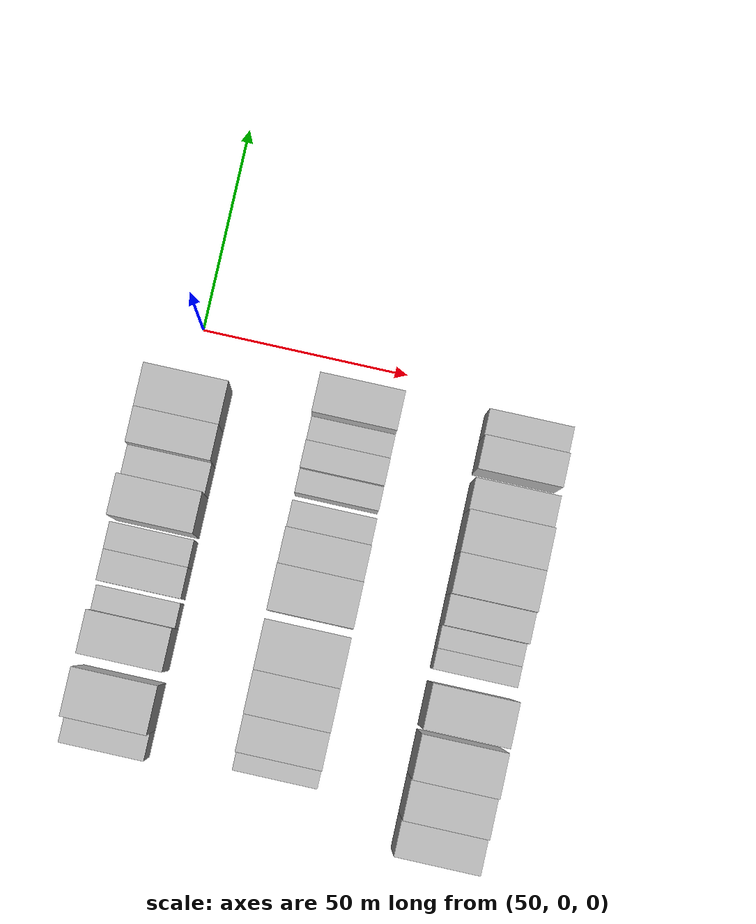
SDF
<sdf version="1.6">
 <world name="default">
  <model name="building_33">
   <static>1</static>
   <pose>50.0000 -98.5830 0 0.000000 0.000000 0.000000</pose>
   <link name="link">
    <pose>0 0 7.50 0 0 0</pose>
    <collision name="collision"><geometry><box><size>20.0000 6.4369 15.0000</size></box></geometry></collision>
    <visual name="visual">
     <cast_shadows>0</cast_shadows>
     <geometry><box><size>20.0000 6.4369 15.0000</size></box></geometry>
     <material>
      <script>
       <uri>model://HANNAS_wall/materials/scripts</uri>
       <uri>model://HANNAS_wall/materials/textures</uri>
       <name>vrc/HANNAS_wall</name>
      </script>
     </material>
    </visual>
   </link>
  </model>
  <model name="building_34">
   <static>1</static>
   <pose>50.0000 -89.6966 0 0.000000 0.000000 0.000000</pose>
   <link name="link">
    <pose>0 0 12.00 0 0 0</pose>
    <collision name="collision"><geometry><box><size>20.0000 11.3359 24.0000</size></box></geometry></collision>
    <visual name="visual">
     <cast_shadows>0</cast_shadows>
     <geometry><box><size>20.0000 11.3359 24.0000</size></box></geometry>
     <material>
      <script>
       <uri>model://HANNAS_wall/materials/scripts</uri>
       <uri>model://HANNAS_wall/materials/textures</uri>
       <name>vrc/HANNAS_wall</name>
      </script>
     </material>
    </visual>
   </link>
  </model>
  <model name="building_35">
   <static>1</static>
   <pose>50.0000 -75.9562 0 0.000000 0.000000 0.000000</pose>
   <link name="link">
    <pose>0 0 10.50 0 0 0</pose>
    <collision name="collision"><geometry><box><size>20.0000 10.1448 21.0000</size></box></geometry></collision>
    <visual name="visual">
     <cast_shadows>0</cast_shadows>
     <geometry><box><size>20.0000 10.1448 21.0000</size></box></geometry>
     <material>
      <script>
       <uri>model://HANNAS_wall/materials/scripts</uri>
       <uri>model://HANNAS_wall/materials/textures</uri>
       <name>vrc/HANNAS_wall</name>
      </script>
     </material>
    </visual>
   </link>
  </model>
  <model name="building_36">
   <static>1</static>
   <pose>50.0000 -67.9341 0 0.000000 0.000000 0.000000</pose>
   <link name="link">
    <pose>0 0 6.00 0 0 0</pose>
    <collision name="collision"><geometry><box><size>20.0000 5.8994 12.0000</size></box></geometry></collision>
    <visual name="visual">
     <cast_shadows>0</cast_shadows>
     <geometry><box><size>20.0000 5.8994 12.0000</size></box></geometry>
     <material>
      <script>
       <uri>model://HANNAS_wall/materials/scripts</uri>
       <uri>model://HANNAS_wall/materials/textures</uri>
       <name>vrc/HANNAS_wall</name>
      </script>
     </material>
    </visual>
   </link>
  </model>
  <model name="building_37">
   <static>1</static>
   <pose>50.0000 -60.2891 0 0.000000 0.000000 0.000000</pose>
   <link name="link">
    <pose>0 0 7.50 0 0 0</pose>
    <collision name="collision"><geometry><box><size>20.0000 7.3907 15.0000</size></box></geometry></collision>
    <visual name="visual">
     <cast_shadows>0</cast_shadows>
     <geometry><box><size>20.0000 7.3907 15.0000</size></box></geometry>
     <material>
      <script>
       <uri>model://HANNAS_wall/materials/scripts</uri>
       <uri>model://HANNAS_wall/materials/textures</uri>
       <name>vrc/HANNAS_wall</name>
      </script>
     </material>
    </visual>
   </link>
  </model>
  <model name="building_38">
   <static>1</static>
   <pose>50.0000 -53.3699 0 0.000000 0.000000 0.000000</pose>
   <link name="link">
    <pose>0 0 7.50 0 0 0</pose>
    <collision name="collision"><geometry><box><size>20.0000 6.4477 15.0000</size></box></geometry></collision>
    <visual name="visual">
     <cast_shadows>0</cast_shadows>
     <geometry><box><size>20.0000 6.4477 15.0000</size></box></geometry>
     <material>
      <script>
       <uri>model://HANNAS_wall/materials/scripts</uri>
       <uri>model://HANNAS_wall/materials/textures</uri>
       <name>vrc/HANNAS_wall</name>
      </script>
     </material>
    </visual>
   </link>
  </model>
  <model name="building_39">
   <static>1</static>
   <pose>50.0000 -44.2829 0 0.000000 0.000000 0.000000</pose>
   <link name="link">
    <pose>0 0 12.00 0 0 0</pose>
    <collision name="collision"><geometry><box><size>20.0000 9.7263 24.0000</size></box></geometry></collision>
    <visual name="visual">
     <cast_shadows>0</cast_shadows>
     <geometry><box><size>20.0000 9.7263 24.0000</size></box></geometry>
     <material>
      <script>
       <uri>model://HANNAS_wall/materials/scripts</uri>
       <uri>model://HANNAS_wall/materials/textures</uri>
       <name>vrc/HANNAS_wall</name>
      </script>
     </material>
    </visual>
   </link>
  </model>
  <model name="building_40">
   <static>1</static>
   <pose>50.0000 -35.6716 0 0.000000 0.000000 0.000000</pose>
   <link name="link">
    <pose>0 0 7.50 0 0 0</pose>
    <collision name="collision"><geometry><box><size>20.0000 7.4963 15.0000</size></box></geometry></collision>
    <visual name="visual">
     <cast_shadows>0</cast_shadows>
     <geometry><box><size>20.0000 7.4963 15.0000</size></box></geometry>
     <material>
      <script>
       <uri>model://HANNAS_wall/materials/scripts</uri>
       <uri>model://HANNAS_wall/materials/textures</uri>
       <name>vrc/HANNAS_wall</name>
      </script>
     </material>
    </visual>
   </link>
  </model>
  <model name="building_41">
   <static>1</static>
   <pose>50.0000 -27.6759 0 0.000000 0.000000 0.000000</pose>
   <link name="link">
    <pose>0 0 10.50 0 0 0</pose>
    <collision name="collision"><geometry><box><size>20.0000 8.4952 21.0000</size></box></geometry></collision>
    <visual name="visual">
     <cast_shadows>0</cast_shadows>
     <geometry><box><size>20.0000 8.4952 21.0000</size></box></geometry>
     <material>
      <script>
       <uri>model://HANNAS_wall/materials/scripts</uri>
       <uri>model://HANNAS_wall/materials/textures</uri>
       <name>vrc/HANNAS_wall</name>
      </script>
     </material>
    </visual>
   </link>
  </model>
  <model name="building_42">
   <static>1</static>
   <pose>50.0000 -18.3086 0 0.000000 0.000000 0.000000</pose>
   <link name="link">
    <pose>0 0 10.50 0 0 0</pose>
    <collision name="collision"><geometry><box><size>20.0000 10.2393 21.0000</size></box></geometry></collision>
    <visual name="visual">
     <cast_shadows>0</cast_shadows>
     <geometry><box><size>20.0000 10.2393 21.0000</size></box></geometry>
     <material>
      <script>
       <uri>model://HANNAS_wall/materials/scripts</uri>
       <uri>model://HANNAS_wall/materials/textures</uri>
       <name>vrc/HANNAS_wall</name>
      </script>
     </material>
    </visual>
   </link>
  </model>
  <model name="building_121">
   <static>1</static>
   <pose>90.0000 -97.1252 0 0.000000 0.000000 0.000000</pose>
   <link name="link">
    <pose>0 0 6.00 0 0 0</pose>
    <collision name="collision"><geometry><box><size>20.0000 4.8168 12.0000</size></box></geometry></collision>
    <visual name="visual">
     <cast_shadows>0</cast_shadows>
     <geometry><box><size>20.0000 4.8168 12.0000</size></box></geometry>
     <material>
      <script>
       <uri>model://HANNAS_wall/materials/scripts</uri>
       <uri>model://HANNAS_wall/materials/textures</uri>
       <name>vrc/HANNAS_wall</name>
      </script>
     </material>
    </visual>
   </link>
  </model>
  <model name="building_122">
   <static>1</static>
   <pose>90.0000 -90.2846 0 0.000000 0.000000 0.000000</pose>
   <link name="link">
    <pose>0 0 10.50 0 0 0</pose>
    <collision name="collision"><geometry><box><size>20.0000 8.8644 21.0000</size></box></geometry></collision>
    <visual name="visual">
     <cast_shadows>0</cast_shadows>
     <geometry><box><size>20.0000 8.8644 21.0000</size></box></geometry>
     <material>
      <script>
       <uri>model://HANNAS_wall/materials/scripts</uri>
       <uri>model://HANNAS_wall/materials/textures</uri>
       <name>vrc/HANNAS_wall</name>
      </script>
     </material>
    </visual>
   </link>
  </model>
  <model name="building_123">
   <static>1</static>
   <pose>90.0000 -80.8224 0 0.000000 0.000000 0.000000</pose>
   <link name="link">
    <pose>0 0 12.00 0 0 0</pose>
    <collision name="collision"><geometry><box><size>20.0000 10.0600 24.0000</size></box></geometry></collision>
    <visual name="visual">
     <cast_shadows>0</cast_shadows>
     <geometry><box><size>20.0000 10.0600 24.0000</size></box></geometry>
     <material>
      <script>
       <uri>model://HANNAS_wall/materials/scripts</uri>
       <uri>model://HANNAS_wall/materials/textures</uri>
       <name>vrc/HANNAS_wall</name>
      </script>
     </material>
    </visual>
   </link>
  </model>
  <model name="building_124">
   <static>1</static>
   <pose>90.0000 -69.9684 0 0.000000 0.000000 0.000000</pose>
   <link name="link">
    <pose>0 0 12.00 0 0 0</pose>
    <collision name="collision"><geometry><box><size>20.0000 11.6479 24.0000</size></box></geometry></collision>
    <visual name="visual">
     <cast_shadows>0</cast_shadows>
     <geometry><box><size>20.0000 11.6479 24.0000</size></box></geometry>
     <material>
      <script>
       <uri>model://HANNAS_wall/materials/scripts</uri>
       <uri>model://HANNAS_wall/materials/textures</uri>
       <name>vrc/HANNAS_wall</name>
      </script>
     </material>
    </visual>
   </link>
  </model>
  <model name="building_125">
   <static>1</static>
   <pose>90.0000 -56.7337 0 0.000000 0.000000 0.000000</pose>
   <link name="link">
    <pose>0 0 12.00 0 0 0</pose>
    <collision name="collision"><geometry><box><size>20.0000 10.8215 24.0000</size></box></geometry></collision>
    <visual name="visual">
     <cast_shadows>0</cast_shadows>
     <geometry><box><size>20.0000 10.8215 24.0000</size></box></geometry>
     <material>
      <script>
       <uri>model://HANNAS_wall/materials/scripts</uri>
       <uri>model://HANNAS_wall/materials/textures</uri>
       <name>vrc/HANNAS_wall</name>
      </script>
     </material>
    </visual>
   </link>
  </model>
  <model name="building_126">
   <static>1</static>
   <pose>90.0000 -47.0268 0 0.000000 0.000000 0.000000</pose>
   <link name="link">
    <pose>0 0 10.50 0 0 0</pose>
    <collision name="collision"><geometry><box><size>20.0000 8.5922 21.0000</size></box></geometry></collision>
    <visual name="visual">
     <cast_shadows>0</cast_shadows>
     <geometry><box><size>20.0000 8.5922 21.0000</size></box></geometry>
     <material>
      <script>
       <uri>model://HANNAS_wall/materials/scripts</uri>
       <uri>model://HANNAS_wall/materials/textures</uri>
       <name>vrc/HANNAS_wall</name>
      </script>
     </material>
    </visual>
   </link>
  </model>
  <model name="building_127">
   <static>1</static>
   <pose>90.0000 -39.4480 0 0.000000 0.000000 0.000000</pose>
   <link name="link">
    <pose>0 0 7.50 0 0 0</pose>
    <collision name="collision"><geometry><box><size>20.0000 6.5654 15.0000</size></box></geometry></collision>
    <visual name="visual">
     <cast_shadows>0</cast_shadows>
     <geometry><box><size>20.0000 6.5654 15.0000</size></box></geometry>
     <material>
      <script>
       <uri>model://HANNAS_wall/materials/scripts</uri>
       <uri>model://HANNAS_wall/materials/textures</uri>
       <name>vrc/HANNAS_wall</name>
      </script>
     </material>
    </visual>
   </link>
  </model>
  <model name="building_128">
   <static>1</static>
   <pose>90.0000 -31.2909 0 0.000000 0.000000 0.000000</pose>
   <link name="link">
    <pose>0 0 6.00 0 0 0</pose>
    <collision name="collision"><geometry><box><size>20.0000 5.7488 12.0000</size></box></geometry></collision>
    <visual name="visual">
     <cast_shadows>0</cast_shadows>
     <geometry><box><size>20.0000 5.7488 12.0000</size></box></geometry>
     <material>
      <script>
       <uri>model://HANNAS_wall/materials/scripts</uri>
       <uri>model://HANNAS_wall/materials/textures</uri>
       <name>vrc/HANNAS_wall</name>
      </script>
     </material>
    </visual>
   </link>
  </model>
  <model name="building_129">
   <static>1</static>
   <pose>90.0000 -25.1430 0 0.000000 0.000000 0.000000</pose>
   <link name="link">
    <pose>0 0 7.50 0 0 0</pose>
    <collision name="collision"><geometry><box><size>20.0000 6.5471 15.0000</size></box></geometry></collision>
    <visual name="visual">
     <cast_shadows>0</cast_shadows>
     <geometry><box><size>20.0000 6.5471 15.0000</size></box></geometry>
     <material>
      <script>
       <uri>model://HANNAS_wall/materials/scripts</uri>
       <uri>model://HANNAS_wall/materials/textures</uri>
       <name>vrc/HANNAS_wall</name>
      </script>
     </material>
    </visual>
   </link>
  </model>
  <model name="building_130">
   <static>1</static>
   <pose>90.0000 -18.8965 0 0.000000 0.000000 0.000000</pose>
   <link name="link">
    <pose>0 0 6.00 0 0 0</pose>
    <collision name="collision"><geometry><box><size>20.0000 5.9459 12.0000</size></box></geometry></collision>
    <visual name="visual">
     <cast_shadows>0</cast_shadows>
     <geometry><box><size>20.0000 5.9459 12.0000</size></box></geometry>
     <material>
      <script>
       <uri>model://HANNAS_wall/materials/scripts</uri>
       <uri>model://HANNAS_wall/materials/textures</uri>
       <name>vrc/HANNAS_wall</name>
      </script>
     </material>
    </visual>
   </link>
  </model>
  <model name="building_131">
   <static>1</static>
   <pose>90.0000 -11.2605 0 0.000000 0.000000 0.000000</pose>
   <link name="link">
    <pose>0 0 10.50 0 0 0</pose>
    <collision name="collision"><geometry><box><size>20.0000 9.3262 21.0000</size></box></geometry></collision>
    <visual name="visual">
     <cast_shadows>0</cast_shadows>
     <geometry><box><size>20.0000 9.3262 21.0000</size></box></geometry>
     <material>
      <script>
       <uri>model://HANNAS_wall/materials/scripts</uri>
       <uri>model://HANNAS_wall/materials/textures</uri>
       <name>vrc/HANNAS_wall</name>
      </script>
     </material>
    </visual>
   </link>
  </model>
  <model name="building_205">
   <static>1</static>
   <pose>130.0000 -105.7158 0 0.000000 0.000000 0.000000</pose>
   <link name="link">
    <pose>0 0 9.00 0 0 0</pose>
    <collision name="collision"><geometry><box><size>20.0000 8.5125 18.0000</size></box></geometry></collision>
    <visual name="visual">
     <cast_shadows>0</cast_shadows>
     <geometry><box><size>20.0000 8.5125 18.0000</size></box></geometry>
     <material>
      <script>
       <uri>model://HANNAS_wall/materials/scripts</uri>
       <uri>model://HANNAS_wall/materials/textures</uri>
       <name>vrc/HANNAS_wall</name>
      </script>
     </material>
    </visual>
   </link>
  </model>
  <model name="building_206">
   <static>1</static>
   <pose>130.0000 -96.7175 0 0.000000 0.000000 0.000000</pose>
   <link name="link">
    <pose>0 0 10.50 0 0 0</pose>
    <collision name="collision"><geometry><box><size>20.0000 9.4842 21.0000</size></box></geometry></collision>
    <visual name="visual">
     <cast_shadows>0</cast_shadows>
     <geometry><box><size>20.0000 9.4842 21.0000</size></box></geometry>
     <material>
      <script>
       <uri>model://HANNAS_wall/materials/scripts</uri>
       <uri>model://HANNAS_wall/materials/textures</uri>
       <name>vrc/HANNAS_wall</name>
      </script>
     </material>
    </visual>
   </link>
  </model>
  <model name="building_207">
   <static>1</static>
   <pose>130.0000 -86.7580 0 0.000000 0.000000 0.000000</pose>
   <link name="link">
    <pose>0 0 12.00 0 0 0</pose>
    <collision name="collision"><geometry><box><size>20.0000 10.4348 24.0000</size></box></geometry></collision>
    <visual name="visual">
     <cast_shadows>0</cast_shadows>
     <geometry><box><size>20.0000 10.4348 24.0000</size></box></geometry>
     <material>
      <script>
       <uri>model://HANNAS_wall/materials/scripts</uri>
       <uri>model://HANNAS_wall/materials/textures</uri>
       <name>vrc/HANNAS_wall</name>
      </script>
     </material>
    </visual>
   </link>
  </model>
  <model name="building_208">
   <static>1</static>
   <pose>130.0000 -75.2584 0 0.000000 0.000000 0.000000</pose>
   <link name="link">
    <pose>0 0 12.00 0 0 0</pose>
    <collision name="collision"><geometry><box><size>20.0000 10.5644 24.0000</size></box></geometry></collision>
    <visual name="visual">
     <cast_shadows>0</cast_shadows>
     <geometry><box><size>20.0000 10.5644 24.0000</size></box></geometry>
     <material>
      <script>
       <uri>model://HANNAS_wall/materials/scripts</uri>
       <uri>model://HANNAS_wall/materials/textures</uri>
       <name>vrc/HANNAS_wall</name>
      </script>
     </material>
    </visual>
   </link>
  </model>
  <model name="building_209">
   <static>1</static>
   <pose>130.0000 -64.5202 0 0.000000 0.000000 0.000000</pose>
   <link name="link">
    <pose>0 0 6.00 0 0 0</pose>
    <collision name="collision"><geometry><box><size>20.0000 4.9120 12.0000</size></box></geometry></collision>
    <visual name="visual">
     <cast_shadows>0</cast_shadows>
     <geometry><box><size>20.0000 4.9120 12.0000</size></box></geometry>
     <material>
      <script>
       <uri>model://HANNAS_wall/materials/scripts</uri>
       <uri>model://HANNAS_wall/materials/textures</uri>
       <name>vrc/HANNAS_wall</name>
      </script>
     </material>
    </visual>
   </link>
  </model>
  <model name="building_210">
   <static>1</static>
   <pose>130.0000 -59.3816 0 0.000000 0.000000 0.000000</pose>
   <link name="link">
    <pose>0 0 6.00 0 0 0</pose>
    <collision name="collision"><geometry><box><size>20.0000 5.3651 12.0000</size></box></geometry></collision>
    <visual name="visual">
     <cast_shadows>0</cast_shadows>
     <geometry><box><size>20.0000 5.3651 12.0000</size></box></geometry>
     <material>
      <script>
       <uri>model://HANNAS_wall/materials/scripts</uri>
       <uri>model://HANNAS_wall/materials/textures</uri>
       <name>vrc/HANNAS_wall</name>
      </script>
     </material>
    </visual>
   </link>
  </model>
  <model name="building_211">
   <static>1</static>
   <pose>130.0000 -53.0359 0 0.000000 0.000000 0.000000</pose>
   <link name="link">
    <pose>0 0 9.00 0 0 0</pose>
    <collision name="collision"><geometry><box><size>20.0000 7.3263 18.0000</size></box></geometry></collision>
    <visual name="visual">
     <cast_shadows>0</cast_shadows>
     <geometry><box><size>20.0000 7.3263 18.0000</size></box></geometry>
     <material>
      <script>
       <uri>model://HANNAS_wall/materials/scripts</uri>
       <uri>model://HANNAS_wall/materials/textures</uri>
       <name>vrc/HANNAS_wall</name>
      </script>
     </material>
    </visual>
   </link>
  </model>
  <model name="building_212">
   <static>1</static>
   <pose>130.0000 -44.5471 0 0.000000 0.000000 0.000000</pose>
   <link name="link">
    <pose>0 0 10.50 0 0 0</pose>
    <collision name="collision"><geometry><box><size>20.0000 9.6514 21.0000</size></box></geometry></collision>
    <visual name="visual">
     <cast_shadows>0</cast_shadows>
     <geometry><box><size>20.0000 9.6514 21.0000</size></box></geometry>
     <material>
      <script>
       <uri>model://HANNAS_wall/materials/scripts</uri>
       <uri>model://HANNAS_wall/materials/textures</uri>
       <name>vrc/HANNAS_wall</name>
      </script>
     </material>
    </visual>
   </link>
  </model>
  <model name="building_213">
   <static>1</static>
   <pose>130.0000 -34.7323 0 0.000000 0.000000 0.000000</pose>
   <link name="link">
    <pose>0 0 10.50 0 0 0</pose>
    <collision name="collision"><geometry><box><size>20.0000 9.9782 21.0000</size></box></geometry></collision>
    <visual name="visual">
     <cast_shadows>0</cast_shadows>
     <geometry><box><size>20.0000 9.9782 21.0000</size></box></geometry>
     <material>
      <script>
       <uri>model://HANNAS_wall/materials/scripts</uri>
       <uri>model://HANNAS_wall/materials/textures</uri>
       <name>vrc/HANNAS_wall</name>
      </script>
     </material>
    </visual>
   </link>
  </model>
  <model name="building_214">
   <static>1</static>
   <pose>130.0000 -25.9407 0 0.000000 0.000000 0.000000</pose>
   <link name="link">
    <pose>0 0 9.00 0 0 0</pose>
    <collision name="collision"><geometry><box><size>20.0000 7.6050 18.0000</size></box></geometry></collision>
    <visual name="visual">
     <cast_shadows>0</cast_shadows>
     <geometry><box><size>20.0000 7.6050 18.0000</size></box></geometry>
     <material>
      <script>
       <uri>model://HANNAS_wall/materials/scripts</uri>
       <uri>model://HANNAS_wall/materials/textures</uri>
       <name>vrc/HANNAS_wall</name>
      </script>
     </material>
    </visual>
   </link>
  </model>
  <model name="building_215">
   <static>1</static>
   <pose>130.0000 -16.0772 0 0.000000 0.000000 0.000000</pose>
   <link name="link">
    <pose>0 0 9.00 0 0 0</pose>
    <collision name="collision"><geometry><box><size>20.0000 8.1220 18.0000</size></box></geometry></collision>
    <visual name="visual">
     <cast_shadows>0</cast_shadows>
     <geometry><box><size>20.0000 8.1220 18.0000</size></box></geometry>
     <material>
      <script>
       <uri>model://HANNAS_wall/materials/scripts</uri>
       <uri>model://HANNAS_wall/materials/textures</uri>
       <name>vrc/HANNAS_wall</name>
      </script>
     </material>
    </visual>
   </link>
  </model>
  <model name="building_216">
   <static>1</static>
   <pose>130.0000 -8.7767 0 0.000000 0.000000 0.000000</pose>
   <link name="link">
    <pose>0 0 7.50 0 0 0</pose>
    <collision name="collision"><geometry><box><size>20.0000 6.4790 15.0000</size></box></geometry></collision>
    <visual name="visual">
     <cast_shadows>0</cast_shadows>
     <geometry><box><size>20.0000 6.4790 15.0000</size></box></geometry>
     <material>
      <script>
       <uri>model://HANNAS_wall/materials/scripts</uri>
       <uri>model://HANNAS_wall/materials/textures</uri>
       <name>vrc/HANNAS_wall</name>
      </script>
     </material>
    </visual>
   </link>
  </model>
 </world>
</sdf>
